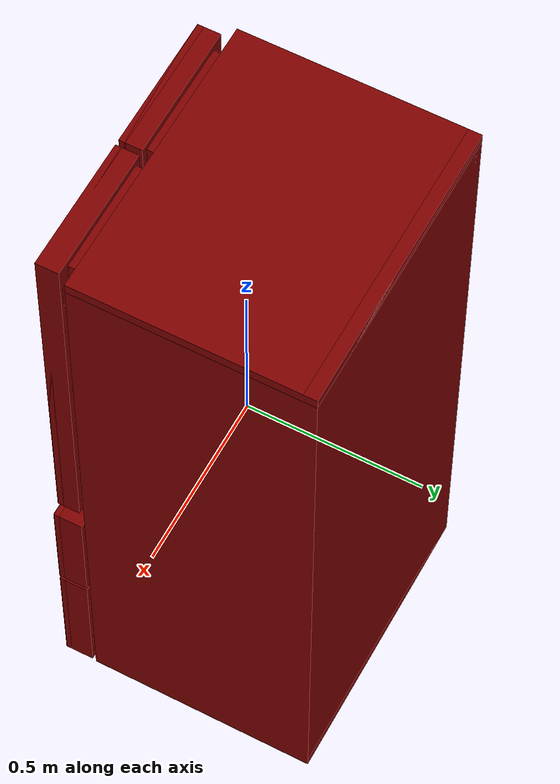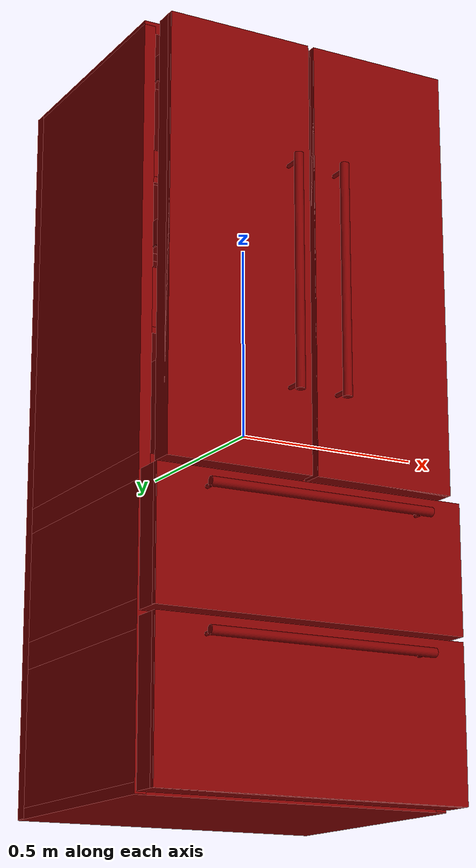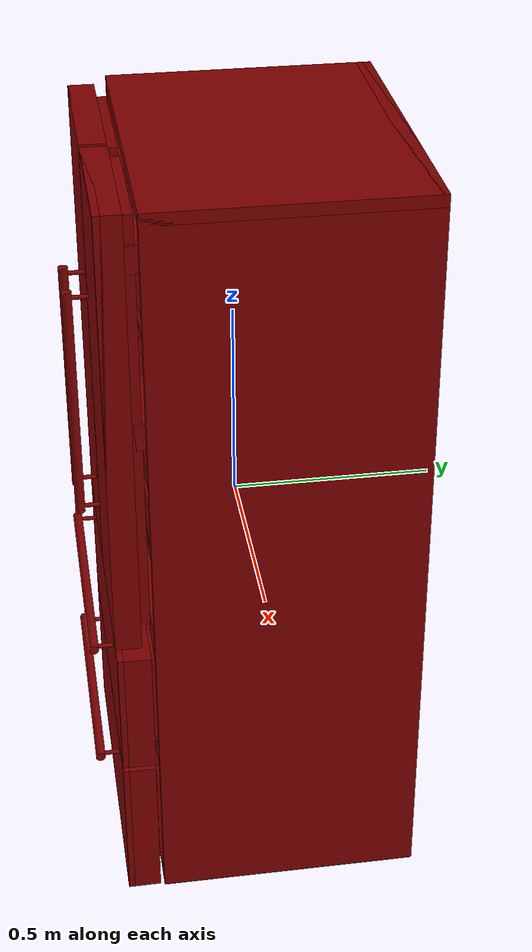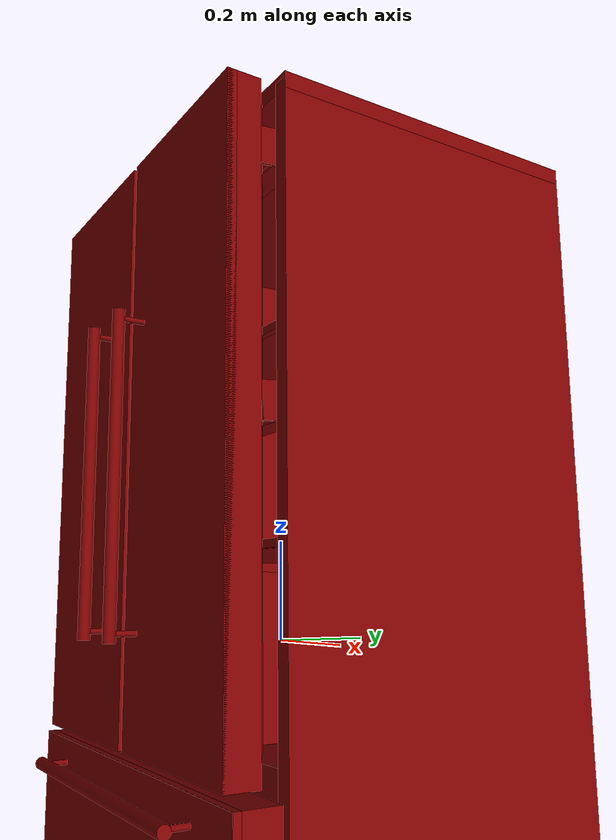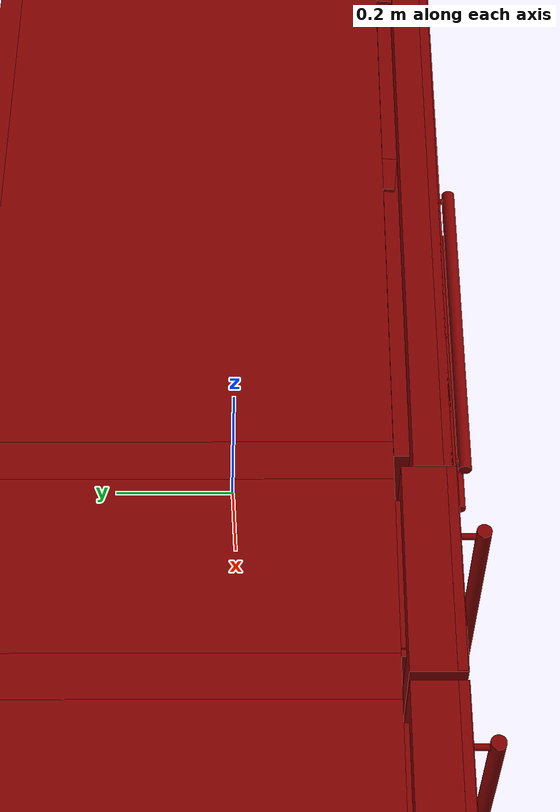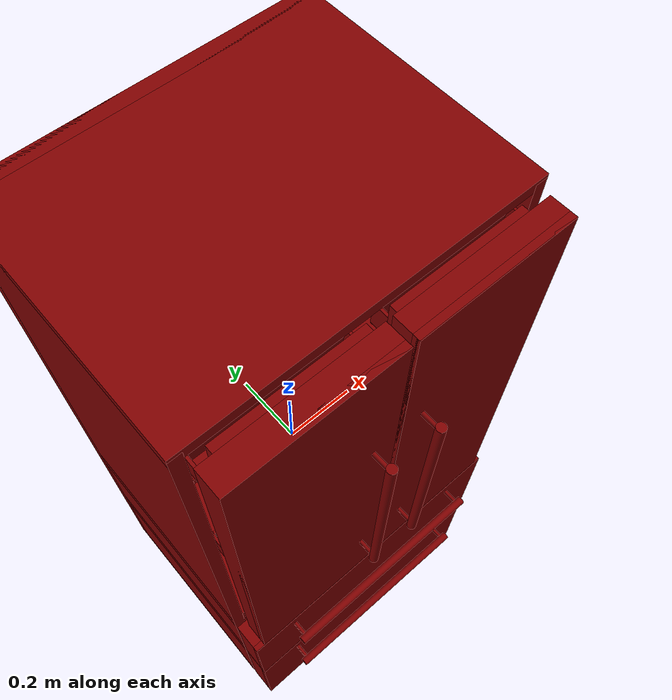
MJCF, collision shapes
<?xml version='1.0' encoding='UTF-8'?>
<mujoco model="model">
  <option timestep="0.002" gravity="0.0 0.0 -9.81"/>
  <compiler angle="radian"/>
  <asset>
    <mesh file="visuals/freezer0.obj" name="freezer0_vis"/>
    <mesh file="visuals/freezer1.obj" name="freezer1_vis"/>
    <mesh file="visuals/fridge_drawer0.obj" name="fridge_drawer0_vis"/>
    <mesh file="visuals/fridge_left_door.obj" name="fridge_left_door_vis"/>
    <mesh file="visuals/fridge_left_door_Clear.obj" name="fridge_left_door_Clear_vis"/>
    <mesh file="visuals/fridge_right_door.obj" name="fridge_right_door_vis"/>
    <mesh file="visuals/fridge_right_door_Clear.obj" name="fridge_right_door_Clear_vis"/>
    <mesh file="visuals/Body001.obj" name="Body001_vis"/>
    <mesh file="visuals/Body001_Clear.obj" name="Body001_Clear_vis"/>
    <texture file="visuals/T_BC001.png" name="Body001_material" type="2d"/>
    <material name="Body001_material" rgba="1 1 1 1.0" texture="Body001_material" shininess="2" specular="2"/>
    <texture file="visuals/T_BC001.png" name="freezer0_material" type="2d"/>
    <material name="freezer0_material" rgba="1 1 1 1.0" texture="freezer0_material" shininess="2" specular="2"/>
    <texture file="visuals/T_BC001.png" name="freezer1_material" type="2d"/>
    <material name="freezer1_material" rgba="1 1 1 1.0" texture="freezer1_material" shininess="2" specular="2"/>
    <texture file="visuals/T_BC001.png" name="fridge_drawer0_material" type="2d"/>
    <material name="fridge_drawer0_material" rgba="1 1 1 1.0" texture="fridge_drawer0_material" shininess="0.141421377658844" specular="0.3103448502657381"/>
    <texture file="visuals/T_BC001.png" name="fridge_left_door_material" type="2d"/>
    <material name="fridge_left_door_material" rgba="1 1 1 1.0" texture="fridge_left_door_material" shininess="2" specular="2"/>
    <texture file="visuals/T_BC001.png" name="fridge_left_door_Clear_material" type="2d"/>
    <material name="fridge_left_door_Clear_material" rgba="1 1 1 0.699999988079071" texture="fridge_left_door_Clear_material" shininess="0.141421377658844" specular="0.3103448502657381"/>
    <texture file="visuals/T_BC001.png" name="fridge_right_door_material" type="2d"/>
    <material name="fridge_right_door_material" rgba="1 1 1 1.0" texture="fridge_right_door_material" shininess="2" specular="2"/>
    <texture file="visuals/T_BC001.png" name="fridge_right_door_Clear_material" type="2d"/>
    <material name="fridge_right_door_Clear_material" rgba="1 1 1 0.699999988079071" texture="fridge_right_door_Clear_material" shininess="0.141421377658844" specular="0.3103448502657381"/>
    <texture file="visuals/T_BC001.png" name="Body001_Clear_material" type="2d"/>
    <material name="Body001_Clear_material" rgba="1 1 1 0.699999988079071" texture="Body001_Clear_material" shininess="0.141421377658844" specular="0.3103448502657381"/>
  </asset>
  <default>
    <default class="visual">
      <geom conaffinity="0" contype="0" group="1" type="mesh"/>
    </default>
    <default class="collision">
      <geom group="0" rgba="0.5 0 0 0.5"/>
    </default>
    <default class="spawn">
      <geom group="0" rgba="1 1 1 0.5" contype="0" conaffinity="0"/>
      <site group="0" rgba="1 1 1 0.5"/>
    </default>
    <default class="region">
      <geom group="1" conaffinity="0" contype="0" rgba="0 1 0 0"/>
    </default>
  </default>
  <worldbody>
    <body>
      <body name="object">
        <geom mesh="Body001_vis" type="mesh" solimp="0.998 0.998 0.001" solref="0.001 1" friction="0.95 0.3 0.1" class="visual" material="Body001_material"/>
        <geom class="collision" type="box" pos="-0.00000500 0.09229907 0.57492310" size="0.3865222930908203 0.25105828046798706 0.00804629921913147" quat="7.907536314633035e-07 0.0 0.0 1.0"/>
        <geom class="collision" type="box" pos="-0.00000500 0.09229907 0.18067828" size="0.3865222930908203 0.25105828046798706 0.008046314120292664" quat="7.907536314633035e-07 0.0 0.0 1.0"/>
        <geom class="collision" type="box" pos="-0.00000777 0.07838923 0.93401116" size="0.41649341583251953 0.32925528287887573 0.014988978393375874" quat="1.0 0.0 0.0 0.0"/>
        <geom class="collision" type="box" pos="-0.40176218 0.07838858 -0.00386390" size="0.014738986268639565 0.32925575971603394 0.9433139562606812" quat="1.0 0.0 0.0 0.0"/>
        <geom class="collision" type="box" pos="0.40152237 0.07838842 -0.00386390" size="0.014963148161768913 0.3292555809020996 0.9433139562606812" quat="1.0 0.0 0.0 0.0"/>
        <geom class="collision" type="box" pos="-0.00005920 0.07838900 -0.19218449" size="0.4164549708366394 0.32925504446029663 0.032401636242866516" quat="1.0 0.0 0.0 0.0"/>
        <geom class="collision" type="box" pos="-0.00005981 0.07838906 -0.54202980" size="0.41645556688308716 0.329255074262619 0.0348663255572319" quat="1.0 0.0 0.0 0.0"/>
        <geom class="collision" type="box" pos="-0.00006677 0.38919809 0.00091116" size="0.4164625108242035 0.01844640076160431 0.9480890035629272" quat="1.0 0.0 0.0 0.0"/>
        <geom class="collision" type="box" pos="-0.00008013 -0.15216632 0.18067828" size="0.39623501896858215 0.007086039055138826 0.008046308532357216" quat="1.0 0.0 0.0 0.0"/>
        <geom class="collision" type="box" pos="-0.00008013 0.34259105 0.18067828" size="0.3962337374687195 0.020284226164221764 0.008046307601034641" quat="1.0 0.0 0.0 0.0"/>
        <geom class="collision" type="box" pos="-0.00008013 -0.15216632 0.57492304" size="0.396234929561615 0.007086039055138826 0.008046306669712067" quat="1.0 0.0 0.0 0.0"/>
        <geom class="collision" type="box" pos="-0.00008013 0.34259105 0.57492304" size="0.3962337374687195 0.020284226164221764 0.008046305738389492" quat="1.0 0.0 0.0 0.0"/>
        <geom class="collision" type="box" pos="-0.00006001 0.07838959 -0.93533456" size="0.4164552092552185 0.3292548656463623 0.013665575534105301" quat="1.0 0.0 0.0 0.0"/>
        <body name="freezer0">
          <geom class="region" name="reg_freezer0" type="box" pos="-2.6024999999985088e-05 -0.007402619999999999 -0.733692945" size="0.344893365 0.2408342 0.134862315"/>
          <joint axis="0.0 -1.0 0.0" pos="0.00002935 -0.07678489 -0.74568111" limited="true" name="freezer0_door_joint" range="0.0 0.45" type="slide" damping="1" frictionloss="1" armature=".01" stiffness="0.05"/>
          <geom mesh="freezer0_vis" type="mesh" solimp="0.998 0.998 0.001" solref="0.001 1" friction="0.95 0.3 0.1" class="visual" material="freezer0_material"/>
          <geom class="collision" type="box" pos="0.00000898 -0.30273789 -0.74586034" size="0.4164569675922394 0.04146213456988335 0.19742357730865479" quat="1.0 0.0 0.0 0.0"/>
          <geom class="collision" type="box" pos="0.00012476 0.24489823 -0.73623079" size="0.37471258640289307 0.006229674909263849 0.14289504289627075" quat="1.0 0.0 0.0 0.0"/>
          <geom class="collision" type="box" pos="0.00012476 -0.00452843 -0.88003427" size="0.37471258640289307 0.25812333822250366 0.006092144642025232" quat="1.0 0.0 0.0 0.0"/>
          <geom class="collision" type="box" pos="-0.36229586 -0.00440892 -0.73842365" size="0.012077601626515388 0.2581234276294708 0.1450880467891693" quat="1.0 0.0 0.0 0.0"/>
          <geom class="collision" type="box" pos="0.36205000 0.00041294 -0.73765224" size="0.012077481485903263 0.2581234574317932 0.14431658387184143" quat="1.0 0.0 0.0 0.0"/>
          <geom class="collision" type="cylinder" pos="0.28619952 -0.36209306 -0.59203577" size="0.005370182916522026 0.02105906419456005" quat="0.5 0.5 0.4999999701976776 -0.5" name="freezer0_door_handle_1"/>
          <geom class="collision" type="cylinder" pos="-0.28642725 -0.36209306 -0.59192932" size="0.005370182916522026 0.02105906419456005" quat="0.5 0.5 0.4999999701976776 -0.5" name="freezer0_door_handle_2"/>
          <geom class="collision" type="cylinder" pos="-0.00080416 -0.39213988 -0.59188688" size="0.011875895783305168 0.30248749256134033" quat="0.7071068286895752 1.2101620150417602e-08 0.7071067690849304 -1.2101619262239183e-08" name="freezer0_door_handle_main"/>
          <geom class="collision" type="box" pos="0.00012476 -0.33555222 -0.74580020" size="0.41660720109939575 0.0073650432750582695 0.19748368859291077" quat="1.0 0.0 0.0 0.0" name="freezer0_door_main"/>
        </body>
        <body name="freezer1">
          <geom class="region" name="reg_freezer1" type="box" pos="-2.6024999999985088e-05 -0.007402619999999999 -0.357985345" size="0.344893365 0.2408342 0.11676831500000001"/>
          <joint axis="0.0 -1.0 0.0" pos="0.00002937 -0.07678489 -0.36917987" limited="true" name="freezer1_door_joint" range="0.0 0.45" type="slide" damping="1" frictionloss="1" armature=".01" stiffness="0.05"/>
          <geom mesh="freezer1_vis" type="mesh" solimp="0.998 0.998 0.001" solref="0.001 1" friction="0.95 0.3 0.1" class="visual" material="freezer1_material"/>
          <geom class="collision" type="box" pos="0.00000901 -0.30273789 -0.36922628" size="0.41645699739456177 0.04146212711930275 0.16630305349826813" quat="1.0 0.0 0.0 0.0"/>
          <geom class="collision" type="box" pos="-0.00012301 0.24489835 -0.36400971" size="0.3742504417896271 0.006229751743376255 0.12733876705169678" quat="1.0 0.0 0.0 0.0"/>
          <geom class="collision" type="box" pos="-0.00012291 -0.00576176 -0.48559526" size="0.3742504119873047 0.25688987970352173 0.00671402458101511" quat="1.0 0.0 0.0 0.0"/>
          <geom class="collision" type="box" pos="-0.36229583 -0.00677354 -0.36449009" size="0.012077567167580128 0.25790175795555115 0.12781912088394165" quat="1.0 0.0 0.0 0.0"/>
          <geom class="collision" type="box" pos="0.36204982 -0.00574673 -0.36449015" size="0.012077613733708858 0.25687485933303833 0.12781918048858643" quat="1.0 0.0 0.0 0.0"/>
          <geom class="collision" type="cylinder" pos="-0.28642725 -0.36209306 -0.24844496" size="0.005370182916522026 0.02105906419456005" quat="0.5 0.5 0.4999999701976776 -0.5" name="freezer1_door_handle_1"/>
          <geom class="collision" type="cylinder" pos="0.28619952 -0.36209306 -0.24855144" size="0.005370182916522026 0.02105906419456005" quat="0.5 0.5 0.4999999701976776 -0.5" name="freezer1_door_handle_2"/>
          <geom class="collision" type="cylinder" pos="-0.00080416 -0.39213988 -0.24840255" size="0.011875895783305168 0.30248749256134033" quat="0.7071068286895752 1.2101620150417602e-08 0.7071067690849304 -1.2101619262239183e-08" name="freezer1_door_handle_main"/>
          <geom class="collision" type="box" pos="0.00012476 -0.33555222 -0.36854529" size="0.41660720109939575 0.0073650432750582695 0.1657266914844513" quat="1.0 0.0 0.0 0.0" name="freezer1_door_main"/>
        </body>
        <body name="fridge_drawer0">
          <geom class="region" name="reg_fridge_drawer0" type="box" pos="0.0006514350000000058 0.059609099999999984 0.008021225" size="0.240148225 0.24819636 0.11190556500000001"/>
          <joint axis="0.0 -1.0 0.0" pos="-0.00012377 0.05742796 -0.00747948" limited="true" name="fridge_drawer0_joint" range="0.0 0.45" type="slide" damping="1" frictionloss="1" armature=".01" stiffness="0.05"/>
          <geom mesh="fridge_drawer0_vis" type="mesh" solimp="0.998 0.998 0.001" solref="0.001 1" friction="0.95 0.3 0.1" class="visual" material="fridge_drawer0_material"/>
          <geom class="collision" type="box" pos="0.00009464 -0.21360207 0.11129444" size="0.24822469055652618 0.010727659799158573 0.015751799568533897" quat="1.0 0.0 0.0 0.0"/>
          <geom class="collision" type="box" pos="-0.27585816 0.05801702 -0.00686345" size="0.025742271915078163 0.2861771881580353 0.13409139215946198" quat="1.0 0.0 0.0 0.0"/>
          <geom class="collision" type="box" pos="-0.00082589 0.33109656 -0.00686345" size="0.24606665968894958 0.014968637377023697 0.13409285247325897" quat="1.0 0.0 0.0 0.0"/>
          <geom class="collision" type="box" pos="-0.00170093 0.05468362 -0.12610245" size="0.29805031418800354 0.28284740447998047 0.01615889184176922" quat="1.0 0.0 0.0 0.0"/>
          <geom class="collision" type="box" pos="0.00009464 -0.22601292 0.09873659" size="0.24822473526000977 0.0026132056955248117 0.028008803725242615" quat="1.0 0.0 0.0 0.0"/>
          <geom class="collision" type="box" pos="0.00009464 -0.21557903 -0.04496174" size="0.24822278320789337 0.012643336318433285 0.05312157794833183" quat="1.0 0.0 0.0 0.0"/>
          <geom class="collision" type="box" pos="0.00009464 -0.20079246 0.01509019" size="0.24822473526000977 0.0023075242061167955 0.111183762550354" quat="1.0 0.0 0.0 0.0"/>
          <geom class="collision" type="box" pos="0.21229011 -0.21352637 0.06040787" size="0.03714979439973831 0.015225662849843502 0.0505049042403698" quat="1.0 0.0 0.0 0.0"/>
          <geom class="collision" type="box" pos="0.27584130 0.05799255 -0.00686345" size="0.025972966104745865 0.28615522384643555 0.13409239053726196" quat="1.0 0.0 0.0 0.0"/>
          <geom class="collision" type="box" pos="-0.00192049 -0.20153016 0.05372828" size="0.1784302145242691 0.003469259012490511 0.04872036352753639" quat="1.0 0.0 0.0 0.0"/>
          <geom class="collision" type="box" pos="-0.21560978 -0.21352637 0.06040787" size="0.03714979439973831 0.015225747600197792 0.05050506815314293" quat="1.0 0.0 0.0 0.0"/>
        </body>
        <body name="fridge_left_door">
          <joint axis="0.0 0.0 -1.0" pos="-0.37535121 -0.30750814 0.38153228" limited="true" name="fridge_left_door_joint" range="0.0 1.5707963267948966" type="hinge" damping="1" frictionloss="1" armature=".01" stiffness="0.05"/>
          <geom mesh="fridge_left_door_vis" type="mesh" solimp="0.998 0.998 0.001" solref="0.001 1" friction="0.95 0.3 0.1" class="visual" material="fridge_left_door_material"/>
          <geom class="collision" type="cylinder" pos="-0.06425043 -0.36526123 0.59618366" size="0.005370182916522026 0.02105906419456005" quat="0.7071067094802856 0.70710688829422 -1.5700925641616852e-16 -1.247691989981498e-24" name="fridge_left_door_handle_1"/>
          <geom class="collision" type="cylinder" pos="-0.06425043 -0.36526123 0.02358168" size="0.005370182916522026 0.02105906419456005" quat="0.7071067094802856 0.70710688829422 -1.5700925641616852e-16 -1.247691989981498e-24" name="fridge_left_door_handle_2"/>
          <geom class="collision" type="cylinder" pos="-0.06439940 -0.39530805 0.30975339" size="0.011875895783305168 0.30248749256134033" quat="1.0 0.0 0.0 0.0" name="fridge_left_door_handle_main"/>
          <geom class="collision" type="box" pos="-0.19734033 -0.33534917 0.37613836" size="0.193319633603096 0.00827835500240326 0.5620813965797424" quat="1.0 0.0 0.0 0.0" name="fridge_left_door_main"/>
          <geom class="collision" type="box" pos="-0.20349256 -0.21271853 0.82866931" size="0.17405283451080322 0.003400996793061495 0.0340593047440052" quat="0.9986742734909058 0.05147518590092659 -1.1429785662452561e-17 -1.0327812330655537e-24"/>
          <geom class="collision" type="box" pos="-0.20349256 -0.22922479 0.79759383" size="0.17405283451080322 0.02237233892083168 0.003458016784861684" quat="1.0 0.0 0.0 0.0"/>
          <geom class="collision" type="box" pos="-0.37654307 -0.25070798 0.82979667" size="0.03272543102502823 0.003400996793061495 0.043013185262680054" quat="0.47605305910110474 0.5228517055511475 -0.5216343998908997 0.4773856997489929"/>
          <geom class="collision" type="box" pos="-0.03086848 -0.23877546 0.83088648" size="0.03272542729973793 0.0034009963274002075 0.029008248820900917" quat="0.47605258226394653 0.5228517651557922 -0.5216347575187683 0.4773857593536377"/>
          <geom class="collision" type="box" pos="-0.20349256 -0.21153781 0.39291659" size="0.17405283451080322 0.003400996793061495 0.0340593047440052" quat="0.9986742734909058 0.05147518590092659 -1.1429785662452561e-17 -1.0327812330655537e-24"/>
          <geom class="collision" type="box" pos="-0.20349256 -0.22804406 0.36184111" size="0.17405283451080322 0.022372335195541382 0.003458016784861684" quat="1.0 0.0 0.0 0.0"/>
          <geom class="collision" type="box" pos="-0.37656166 -0.24226187 0.39470753" size="0.03272542729973793 0.003400996793061495 0.03316066041588783" quat="0.47605347633361816 0.5228511095046997 -0.5216351747512817 0.47738516330718994"/>
          <geom class="collision" type="box" pos="-0.03088708 -0.23032935 0.39579734" size="0.03272542357444763 0.003400996560230851 0.022363685071468353" quat="0.47605326771736145 0.5228512287139893 -0.5216350555419922 0.4773852825164795"/>
          <geom class="collision" type="box" pos="-0.19734033 -0.31316757 0.37613836" size="0.193319633603096 0.031898852437734604 0.5620813965797424" quat="1.0 0.0 0.0 0.0"/>
          <geom class="collision" type="box" pos="-0.18746745 -0.26777858 0.38717163" size="0.165060892701149 0.012230315245687962 0.532565176486969" quat="1.0 0.0 0.0 0.0"/>
          <body name="fridge_left_door_Clear">
            <geom mesh="fridge_left_door_Clear_vis" type="mesh" solimp="0.998 0.998 0.001" solref="0.001 1" friction="0.95 0.3 0.1" class="visual" material="fridge_left_door_Clear_material"/>
            <geom class="collision" type="box" pos="-0.20349256 -0.21271853 0.82866931" size="0.17405283451080322 0.003400996793061495 0.0340593047440052" quat="0.9986742734909058 0.05147518590092659 -1.1429785662452561e-17 -1.0327812330655537e-24"/>
            <geom class="collision" type="box" pos="-0.20349256 -0.22922479 0.79759383" size="0.17405283451080322 0.02237233892083168 0.003458016784861684" quat="1.0 0.0 0.0 0.0"/>
            <geom class="collision" type="box" pos="-0.37654307 -0.25070798 0.82979667" size="0.03272543102502823 0.003400996793061495 0.043013185262680054" quat="0.47605305910110474 0.5228517055511475 -0.5216343998908997 0.4773856997489929"/>
            <geom class="collision" type="box" pos="-0.03086848 -0.23877546 0.83088648" size="0.03272542729973793 0.0034009963274002075 0.029008248820900917" quat="0.47605258226394653 0.5228517651557922 -0.5216347575187683 0.4773857593536377"/>
            <geom class="collision" type="box" pos="-0.20349256 -0.21153781 0.39291659" size="0.17405283451080322 0.003400996793061495 0.0340593047440052" quat="0.9986742734909058 0.05147518590092659 -1.1429785662452561e-17 -1.0327812330655537e-24"/>
            <geom class="collision" type="box" pos="-0.20349256 -0.22804406 0.36184111" size="0.17405283451080322 0.022372335195541382 0.003458016784861684" quat="1.0 0.0 0.0 0.0"/>
            <geom class="collision" type="box" pos="-0.37656166 -0.24226187 0.39470753" size="0.03272542729973793 0.003400996793061495 0.03316066041588783" quat="0.47605347633361816 0.5228511095046997 -0.5216351747512817 0.47738516330718994"/>
            <geom class="collision" type="box" pos="-0.03088708 -0.23032935 0.39579734" size="0.03272542357444763 0.003400996560230851 0.022363685071468353" quat="0.47605326771736145 0.5228512287139893 -0.5216350555419922 0.4773852825164795"/>
          </body>
        </body>
        <body name="fridge_right_door">
          <joint axis="0.0 0.0 1.0" pos="0.37534545 -0.30750802 0.38152799" limited="true" name="fridge_right_door_joint" range="0.0 1.5707963267948966" type="hinge" damping="1" frictionloss="1" armature=".01" stiffness="0.05"/>
          <geom mesh="fridge_right_door_vis" type="mesh" solimp="0.998 0.998 0.001" solref="0.001 1" friction="0.95 0.3 0.1" class="visual" material="fridge_right_door_material"/>
          <geom class="collision" type="cylinder" pos="0.06649378 -0.36526123 0.59618366" size="0.005370182916522026 0.02105906419456005" quat="0.7071067094802856 0.70710688829422 -1.5700925641616852e-16 -1.247691989981498e-24" name="fridge_right_door_handle_1"/>
          <geom class="collision" type="cylinder" pos="0.06638730 -0.36526123 0.02358168" size="0.005370182916522026 0.02105906419456005" quat="0.7071067094802856 0.70710688829422 -1.5700925641616852e-16 -1.247691989981498e-24" name="fridge_right_door_handle_2"/>
          <geom class="collision" type="cylinder" pos="0.06634489 -0.39530805 0.30975339" size="0.011875895783305168 0.30248749256134033" quat="1.0 0.0 0.0 0.0" name="fridge_right_door_handle_main"/>
          <geom class="collision" type="box" pos="0.20093859 -0.33531287 0.37600929" size="0.18959581851959229 0.00838713999837637 0.5622107982635498" quat="1.0 0.0 0.0 0.0" name="fridge_right_door_main"/>
          <geom class="collision" type="box" pos="0.20954176 -0.21271853 0.82866931" size="0.16922004520893097 0.003400996793061495 0.0340593047440052" quat="0.9986742734909058 0.05147518590092659 -1.1429785662452561e-17 -1.0327812330655537e-24"/>
          <geom class="collision" type="box" pos="0.20954176 -0.22922479 0.79759383" size="0.16922004520893097 0.022372325882315636 0.003458016784861684" quat="1.0 0.0 0.0 0.0"/>
          <geom class="collision" type="box" pos="0.04129568 -0.23965357 0.83080631" size="0.03272542729973793 0.0034009963274002075 0.029008248820900917" quat="0.47605258226394653 0.5228517651557922 -0.5216347575187683 0.4773857593536377"/>
          <geom class="collision" type="box" pos="0.37712566 -0.24982986 0.82987684" size="0.03272543102502823 0.003400996793061495 0.043013185262680054" quat="0.47605305910110474 0.5228517055511475 -0.5216343998908997 0.4773856997489929"/>
          <geom class="collision" type="box" pos="0.20954176 -0.21153781 0.39291659" size="0.16922004520893097 0.003400996793061495 0.0340593047440052" quat="0.9986742734909058 0.05147518590092659 -1.1429785662452561e-17 -1.0327812330655537e-24"/>
          <geom class="collision" type="box" pos="0.20954176 -0.22804406 0.36184111" size="0.16922004520893097 0.022372322157025337 0.003458016784861684" quat="1.0 0.0 0.0 0.0"/>
          <geom class="collision" type="box" pos="0.04127708 -0.23120746 0.39571717" size="0.03272542357444763 0.003400996560230851 0.022363685071468353" quat="0.47605326771736145 0.5228512287139893 -0.5216350555419922 0.4773852825164795"/>
          <geom class="collision" type="box" pos="0.37785817 -0.24138376 0.39478770" size="0.03272542729973793 0.003400996793061495 0.03316066041588783" quat="0.47605347633361816 0.5228511095046997 -0.5216351747512817 0.47738516330718994"/>
          <geom class="collision" type="box" pos="0.20093859 -0.31288803 0.37600929" size="0.18959581851959229 0.032178349792957306 0.5622107982635498" quat="1.0 0.0 0.0 0.0"/>
          <geom class="collision" type="box" pos="0.19030721 -0.26777858 0.38717163" size="0.1607256531715393 0.012230283580720425 0.5325640439987183" quat="1.0 0.0 0.0 0.0"/>
          <body name="fridge_right_door_Clear">
            <geom mesh="fridge_right_door_Clear_vis" type="mesh" solimp="0.998 0.998 0.001" solref="0.001 1" friction="0.95 0.3 0.1" class="visual" material="fridge_right_door_Clear_material"/>
            <geom class="collision" type="box" pos="0.20954176 -0.21271853 0.82866931" size="0.16922004520893097 0.003400996793061495 0.0340593047440052" quat="0.9986742734909058 0.05147518590092659 -1.1429785662452561e-17 -1.0327812330655537e-24"/>
            <geom class="collision" type="box" pos="0.20954176 -0.22922479 0.79759383" size="0.16922004520893097 0.022372325882315636 0.003458016784861684" quat="1.0 0.0 0.0 0.0"/>
            <geom class="collision" type="box" pos="0.04129568 -0.23965357 0.83080631" size="0.03272542729973793 0.0034009963274002075 0.029008248820900917" quat="0.47605258226394653 0.5228517651557922 -0.5216347575187683 0.4773857593536377"/>
            <geom class="collision" type="box" pos="0.37712566 -0.24982986 0.82987684" size="0.03272543102502823 0.003400996793061495 0.043013185262680054" quat="0.47605305910110474 0.5228517055511475 -0.5216343998908997 0.4773856997489929"/>
            <geom class="collision" type="box" pos="0.20954176 -0.21153781 0.39291659" size="0.16922004520893097 0.003400996793061495 0.0340593047440052" quat="0.9986742734909058 0.05147518590092659 -1.1429785662452561e-17 -1.0327812330655537e-24"/>
            <geom class="collision" type="box" pos="0.20954176 -0.22804406 0.36184111" size="0.16922004520893097 0.022372322157025337 0.003458016784861684" quat="1.0 0.0 0.0 0.0"/>
            <geom class="collision" type="box" pos="0.04127708 -0.23120746 0.39571717" size="0.03272542357444763 0.003400996560230851 0.022363685071468353" quat="0.47605326771736145 0.5228512287139893 -0.5216350555419922 0.4773852825164795"/>
            <geom class="collision" type="box" pos="0.37785817 -0.24138376 0.39478770" size="0.03272542729973793 0.003400996793061495 0.03316066041588783" quat="0.47605347633361816 0.5228511095046997 -0.5216351747512817 0.47738516330718994"/>
          </body>
        </body>
        <body name="Body001_Clear">
          <geom mesh="Body001_Clear_vis" type="mesh" solimp="0.998 0.998 0.001" solref="0.001 1" friction="0.95 0.3 0.1" class="visual" material="Body001_Clear_material"/>
          <geom class="collision" type="box" pos="-0.00000500 0.09229907 0.57492310" size="0.3865222930908203 0.25105828046798706 0.00804629921913147" quat="7.907536314633035e-07 0.0 0.0 1.0"/>
          <geom class="collision" type="box" pos="-0.00000500 0.09229907 0.18067828" size="0.3865222930908203 0.25105828046798706 0.008046314120292664" quat="7.907536314633035e-07 0.0 0.0 1.0"/>
        </body>
        <geom class="region" name="reg_fridge_shelf0" type="box" pos="-0.0002585750000000109 0.10178798 0.378062695" size="0.382228225 0.26148685 0.18441985500000002"/>
        <geom class="region" name="reg_fridge_shelf1" type="box" pos="5.1309999999998857e-05 0.10178798 0.74999997" size="0.38191834 0.26148685 0.16215943"/>
        <geom class="region" name="reg_main" type="box" pos="-4.990000000010264e-06 0.03131276500000002 0.0" size="0.41752426 0.377378985 0.95000012"/>
      </body>
    </body>
  </worldbody>
  <actuator>
    <motor name="freezer0_door_joint_actuator" joint="freezer0_door_joint" gear="50"/>
    <motor name="freezer1_door_joint_actuator" joint="freezer1_door_joint" gear="50"/>
    <motor name="fridge_drawer0_joint_actuator" joint="fridge_drawer0_joint" gear="50"/>
    <motor name="fridge_left_door_joint_actuator" joint="fridge_left_door_joint" gear="50"/>
    <motor name="fridge_right_door_joint_actuator" joint="fridge_right_door_joint" gear="50"/>
  </actuator>
</mujoco>
